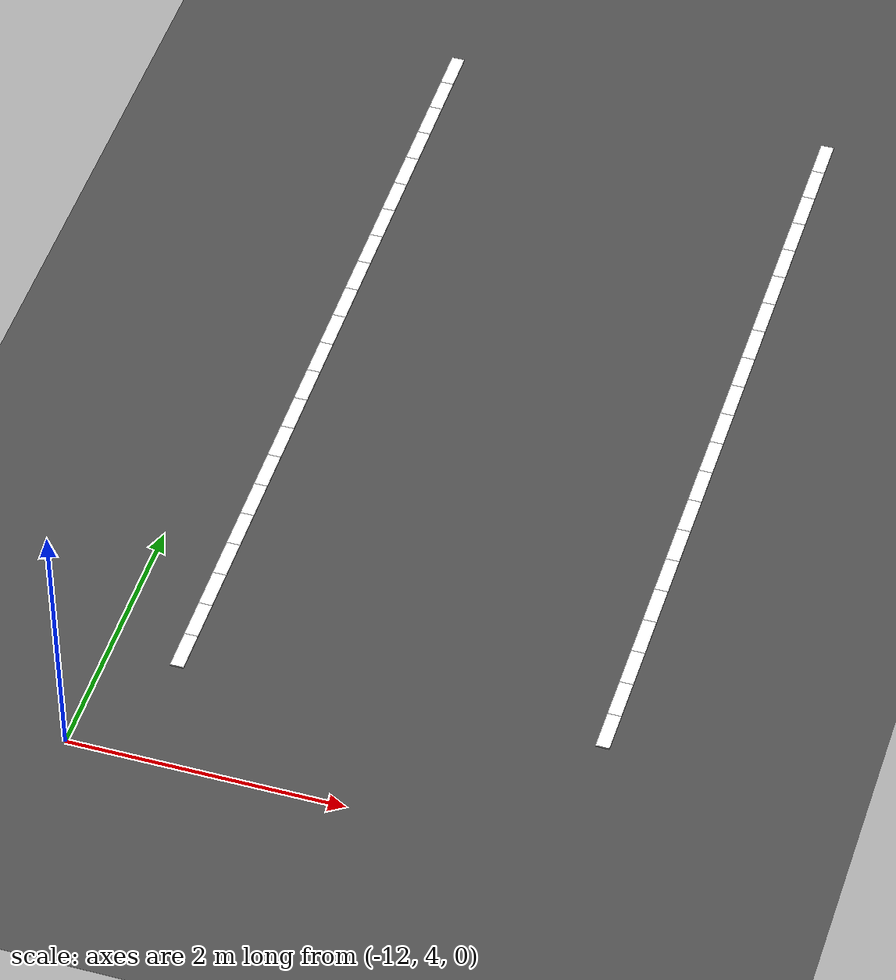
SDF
<sdf version="1.10">
 <world name="igvc_autonav">
  <model name="ground_plane">
   <static>true</static>
   <link name="link">
    <collision name="collision">
     <geometry><plane><normal>0 0 1</normal><size>60 60</size></plane></geometry>
     <surface><friction><ode><mu>0.80000000000000004</mu><mu2>0.80000000000000004</mu2></ode></friction></surface>
    </collision>
    <visual name="visual">
     <geometry><plane><normal>0 0 1</normal><size>60 60</size></plane></geometry>
     <material>
      <ambient>0.25 0.25 0.25 1</ambient>
      <diffuse>0.300000012 0.300000012 0.300000012 1</diffuse>
      <specular>0.100000001 0.100000001 0.100000001 1</specular>
     </material>
    </visual>
    <inertial>
     <mass>1</mass>
     <inertia><ixx>1</ixx><ixy>0</ixy><ixz>0</ixz><iyy>1</iyy><iyz>0</iyz><izz>1</izz></inertia>
    </inertial>
   </link>
  </model>
  <model name="lane_inner_156">
   <static>true</static>
   <pose>-8.5 11.15 0.01 0 0 -1.5708</pose>
   <link name="link">
    <visual name="visual">
     <geometry><box><size>0.29999999999999999 0.10000000000000001 0.01</size></box></geometry>
     <material><ambient>1 1 1 1</ambient><diffuse>1 1 1 1</diffuse><emissive>1 1 1 1</emissive></material>
    </visual>
    <inertial>
     <mass>1</mass>
     <inertia><ixx>1</ixx><ixy>0</ixy><ixz>0</ixz><iyy>1</iyy><iyz>0</iyz><izz>1</izz></inertia>
    </inertial>
   </link>
  </model>
  <model name="lane_inner_157">
   <static>true</static>
   <pose>-8.5 10.85 0.01 0 0 -1.5708</pose>
   <link name="link">
    <visual name="visual">
     <geometry><box><size>0.29999999999999999 0.10000000000000001 0.01</size></box></geometry>
     <material><ambient>1 1 1 1</ambient><diffuse>1 1 1 1</diffuse><emissive>1 1 1 1</emissive></material>
    </visual>
    <inertial>
     <mass>1</mass>
     <inertia><ixx>1</ixx><ixy>0</ixy><ixz>0</ixz><iyy>1</iyy><iyz>0</iyz><izz>1</izz></inertia>
    </inertial>
   </link>
  </model>
  <model name="lane_inner_158">
   <static>true</static>
   <pose>-8.5 10.550000000000001 0.01 0 0 -1.5708</pose>
   <link name="link">
    <visual name="visual">
     <geometry><box><size>0.29999999999999999 0.10000000000000001 0.01</size></box></geometry>
     <material><ambient>1 1 1 1</ambient><diffuse>1 1 1 1</diffuse><emissive>1 1 1 1</emissive></material>
    </visual>
    <inertial>
     <mass>1</mass>
     <inertia><ixx>1</ixx><ixy>0</ixy><ixz>0</ixz><iyy>1</iyy><iyz>0</iyz><izz>1</izz></inertia>
    </inertial>
   </link>
  </model>
  <model name="lane_inner_159">
   <static>true</static>
   <pose>-8.5 10.25 0.01 0 0 -1.5708</pose>
   <link name="link">
    <visual name="visual">
     <geometry><box><size>0.29999999999999999 0.10000000000000001 0.01</size></box></geometry>
     <material><ambient>1 1 1 1</ambient><diffuse>1 1 1 1</diffuse><emissive>1 1 1 1</emissive></material>
    </visual>
    <inertial>
     <mass>1</mass>
     <inertia><ixx>1</ixx><ixy>0</ixy><ixz>0</ixz><iyy>1</iyy><iyz>0</iyz><izz>1</izz></inertia>
    </inertial>
   </link>
  </model>
  <model name="lane_inner_160">
   <static>true</static>
   <pose>-8.5 9.9499999999999993 0.01 0 0 -1.5708</pose>
   <link name="link">
    <visual name="visual">
     <geometry><box><size>0.29999999999999999 0.10000000000000001 0.01</size></box></geometry>
     <material><ambient>1 1 1 1</ambient><diffuse>1 1 1 1</diffuse><emissive>1 1 1 1</emissive></material>
    </visual>
    <inertial>
     <mass>1</mass>
     <inertia><ixx>1</ixx><ixy>0</ixy><ixz>0</ixz><iyy>1</iyy><iyz>0</iyz><izz>1</izz></inertia>
    </inertial>
   </link>
  </model>
  <model name="lane_inner_161">
   <static>true</static>
   <pose>-8.5 9.6500000000000004 0.01 0 0 -1.5708</pose>
   <link name="link">
    <visual name="visual">
     <geometry><box><size>0.29999999999999999 0.10000000000000001 0.01</size></box></geometry>
     <material><ambient>1 1 1 1</ambient><diffuse>1 1 1 1</diffuse><emissive>1 1 1 1</emissive></material>
    </visual>
    <inertial>
     <mass>1</mass>
     <inertia><ixx>1</ixx><ixy>0</ixy><ixz>0</ixz><iyy>1</iyy><iyz>0</iyz><izz>1</izz></inertia>
    </inertial>
   </link>
  </model>
  <model name="lane_inner_162">
   <static>true</static>
   <pose>-8.5 9.3499999999999996 0.01 0 0 -1.5708</pose>
   <link name="link">
    <visual name="visual">
     <geometry><box><size>0.29999999999999999 0.10000000000000001 0.01</size></box></geometry>
     <material><ambient>1 1 1 1</ambient><diffuse>1 1 1 1</diffuse><emissive>1 1 1 1</emissive></material>
    </visual>
    <inertial>
     <mass>1</mass>
     <inertia><ixx>1</ixx><ixy>0</ixy><ixz>0</ixz><iyy>1</iyy><iyz>0</iyz><izz>1</izz></inertia>
    </inertial>
   </link>
  </model>
  <model name="lane_inner_163">
   <static>true</static>
   <pose>-8.5 9.0500000000000007 0.01 0 0 -1.5708</pose>
   <link name="link">
    <visual name="visual">
     <geometry><box><size>0.29999999999999999 0.10000000000000001 0.01</size></box></geometry>
     <material><ambient>1 1 1 1</ambient><diffuse>1 1 1 1</diffuse><emissive>1 1 1 1</emissive></material>
    </visual>
    <inertial>
     <mass>1</mass>
     <inertia><ixx>1</ixx><ixy>0</ixy><ixz>0</ixz><iyy>1</iyy><iyz>0</iyz><izz>1</izz></inertia>
    </inertial>
   </link>
  </model>
  <model name="lane_inner_164">
   <static>true</static>
   <pose>-8.5 8.75 0.01 0 0 -1.5708</pose>
   <link name="link">
    <visual name="visual">
     <geometry><box><size>0.29999999999999999 0.10000000000000001 0.01</size></box></geometry>
     <material><ambient>1 1 1 1</ambient><diffuse>1 1 1 1</diffuse><emissive>1 1 1 1</emissive></material>
    </visual>
    <inertial>
     <mass>1</mass>
     <inertia><ixx>1</ixx><ixy>0</ixy><ixz>0</ixz><iyy>1</iyy><iyz>0</iyz><izz>1</izz></inertia>
    </inertial>
   </link>
  </model>
  <model name="lane_inner_165">
   <static>true</static>
   <pose>-8.5 8.4499999999999993 0.01 0 0 -1.5708</pose>
   <link name="link">
    <visual name="visual">
     <geometry><box><size>0.29999999999999999 0.10000000000000001 0.01</size></box></geometry>
     <material><ambient>1 1 1 1</ambient><diffuse>1 1 1 1</diffuse><emissive>1 1 1 1</emissive></material>
    </visual>
    <inertial>
     <mass>1</mass>
     <inertia><ixx>1</ixx><ixy>0</ixy><ixz>0</ixz><iyy>1</iyy><iyz>0</iyz><izz>1</izz></inertia>
    </inertial>
   </link>
  </model>
  <model name="lane_inner_166">
   <static>true</static>
   <pose>-8.5 8.1500000000000004 0.01 0 0 -1.5708</pose>
   <link name="link">
    <visual name="visual">
     <geometry><box><size>0.29999999999999999 0.10000000000000001 0.01</size></box></geometry>
     <material><ambient>1 1 1 1</ambient><diffuse>1 1 1 1</diffuse><emissive>1 1 1 1</emissive></material>
    </visual>
    <inertial>
     <mass>1</mass>
     <inertia><ixx>1</ixx><ixy>0</ixy><ixz>0</ixz><iyy>1</iyy><iyz>0</iyz><izz>1</izz></inertia>
    </inertial>
   </link>
  </model>
  <model name="lane_inner_167">
   <static>true</static>
   <pose>-8.5 7.8499999999999996 0.01 0 0 -1.5708</pose>
   <link name="link">
    <visual name="visual">
     <geometry><box><size>0.29999999999999999 0.10000000000000001 0.01</size></box></geometry>
     <material><ambient>1 1 1 1</ambient><diffuse>1 1 1 1</diffuse><emissive>1 1 1 1</emissive></material>
    </visual>
    <inertial>
     <mass>1</mass>
     <inertia><ixx>1</ixx><ixy>0</ixy><ixz>0</ixz><iyy>1</iyy><iyz>0</iyz><izz>1</izz></inertia>
    </inertial>
   </link>
  </model>
  <model name="lane_inner_168">
   <static>true</static>
   <pose>-8.5 7.5499999999999998 0.01 0 0 -1.5708</pose>
   <link name="link">
    <visual name="visual">
     <geometry><box><size>0.29999999999999999 0.10000000000000001 0.01</size></box></geometry>
     <material><ambient>1 1 1 1</ambient><diffuse>1 1 1 1</diffuse><emissive>1 1 1 1</emissive></material>
    </visual>
    <inertial>
     <mass>1</mass>
     <inertia><ixx>1</ixx><ixy>0</ixy><ixz>0</ixz><iyy>1</iyy><iyz>0</iyz><izz>1</izz></inertia>
    </inertial>
   </link>
  </model>
  <model name="lane_inner_169">
   <static>true</static>
   <pose>-8.5 7.25 0.01 0 0 -1.5708</pose>
   <link name="link">
    <visual name="visual">
     <geometry><box><size>0.29999999999999999 0.10000000000000001 0.01</size></box></geometry>
     <material><ambient>1 1 1 1</ambient><diffuse>1 1 1 1</diffuse><emissive>1 1 1 1</emissive></material>
    </visual>
    <inertial>
     <mass>1</mass>
     <inertia><ixx>1</ixx><ixy>0</ixy><ixz>0</ixz><iyy>1</iyy><iyz>0</iyz><izz>1</izz></inertia>
    </inertial>
   </link>
  </model>
  <model name="lane_inner_170">
   <static>true</static>
   <pose>-8.5 6.9500000000000002 0.01 0 0 -1.5708</pose>
   <link name="link">
    <visual name="visual">
     <geometry><box><size>0.29999999999999999 0.10000000000000001 0.01</size></box></geometry>
     <material><ambient>1 1 1 1</ambient><diffuse>1 1 1 1</diffuse><emissive>1 1 1 1</emissive></material>
    </visual>
    <inertial>
     <mass>1</mass>
     <inertia><ixx>1</ixx><ixy>0</ixy><ixz>0</ixz><iyy>1</iyy><iyz>0</iyz><izz>1</izz></inertia>
    </inertial>
   </link>
  </model>
  <model name="lane_inner_171">
   <static>true</static>
   <pose>-8.5 6.6500000000000004 0.01 0 0 -1.5708</pose>
   <link name="link">
    <visual name="visual">
     <geometry><box><size>0.29999999999999999 0.10000000000000001 0.01</size></box></geometry>
     <material><ambient>1 1 1 1</ambient><diffuse>1 1 1 1</diffuse><emissive>1 1 1 1</emissive></material>
    </visual>
    <inertial>
     <mass>1</mass>
     <inertia><ixx>1</ixx><ixy>0</ixy><ixz>0</ixz><iyy>1</iyy><iyz>0</iyz><izz>1</izz></inertia>
    </inertial>
   </link>
  </model>
  <model name="lane_inner_172">
   <static>true</static>
   <pose>-8.5 6.3499999999999996 0.01 0 0 -1.5708</pose>
   <link name="link">
    <visual name="visual">
     <geometry><box><size>0.29999999999999999 0.10000000000000001 0.01</size></box></geometry>
     <material><ambient>1 1 1 1</ambient><diffuse>1 1 1 1</diffuse><emissive>1 1 1 1</emissive></material>
    </visual>
    <inertial>
     <mass>1</mass>
     <inertia><ixx>1</ixx><ixy>0</ixy><ixz>0</ixz><iyy>1</iyy><iyz>0</iyz><izz>1</izz></inertia>
    </inertial>
   </link>
  </model>
  <model name="lane_inner_173">
   <static>true</static>
   <pose>-8.5 6.0499999999999998 0.01 0 0 -1.5708</pose>
   <link name="link">
    <visual name="visual">
     <geometry><box><size>0.29999999999999999 0.10000000000000001 0.01</size></box></geometry>
     <material><ambient>1 1 1 1</ambient><diffuse>1 1 1 1</diffuse><emissive>1 1 1 1</emissive></material>
    </visual>
    <inertial>
     <mass>1</mass>
     <inertia><ixx>1</ixx><ixy>0</ixy><ixz>0</ixz><iyy>1</iyy><iyz>0</iyz><izz>1</izz></inertia>
    </inertial>
   </link>
  </model>
  <model name="lane_inner_174">
   <static>true</static>
   <pose>-8.5 5.75 0.01 0 0 -1.5708</pose>
   <link name="link">
    <visual name="visual">
     <geometry><box><size>0.29999999999999999 0.10000000000000001 0.01</size></box></geometry>
     <material><ambient>1 1 1 1</ambient><diffuse>1 1 1 1</diffuse><emissive>1 1 1 1</emissive></material>
    </visual>
    <inertial>
     <mass>1</mass>
     <inertia><ixx>1</ixx><ixy>0</ixy><ixz>0</ixz><iyy>1</iyy><iyz>0</iyz><izz>1</izz></inertia>
    </inertial>
   </link>
  </model>
  <model name="lane_inner_175">
   <static>true</static>
   <pose>-8.5 5.4500000000000002 0.01 0 0 -1.5708</pose>
   <link name="link">
    <visual name="visual">
     <geometry><box><size>0.29999999999999999 0.10000000000000001 0.01</size></box></geometry>
     <material><ambient>1 1 1 1</ambient><diffuse>1 1 1 1</diffuse><emissive>1 1 1 1</emissive></material>
    </visual>
    <inertial>
     <mass>1</mass>
     <inertia><ixx>1</ixx><ixy>0</ixy><ixz>0</ixz><iyy>1</iyy><iyz>0</iyz><izz>1</izz></inertia>
    </inertial>
   </link>
  </model>
  <model name="lane_inner_176">
   <static>true</static>
   <pose>-8.5 5.1500000000000004 0.01 0 0 -1.5708</pose>
   <link name="link">
    <visual name="visual">
     <geometry><box><size>0.29999999999999999 0.10000000000000001 0.01</size></box></geometry>
     <material><ambient>1 1 1 1</ambient><diffuse>1 1 1 1</diffuse><emissive>1 1 1 1</emissive></material>
    </visual>
    <inertial>
     <mass>1</mass>
     <inertia><ixx>1</ixx><ixy>0</ixy><ixz>0</ixz><iyy>1</iyy><iyz>0</iyz><izz>1</izz></inertia>
    </inertial>
   </link>
  </model>
  <model name="lane_outer_188">
   <static>true</static>
   <pose>-11.5 11.300000000000001 0.01 0 0 -1.5708</pose>
   <link name="link">
    <visual name="visual">
     <geometry><box><size>0.29999999999999999 0.10000000000000001 0.01</size></box></geometry>
     <material><ambient>1 1 1 1</ambient><diffuse>1 1 1 1</diffuse><emissive>1 1 1 1</emissive></material>
    </visual>
    <inertial>
     <mass>1</mass>
     <inertia><ixx>1</ixx><ixy>0</ixy><ixz>0</ixz><iyy>1</iyy><iyz>0</iyz><izz>1</izz></inertia>
    </inertial>
   </link>
  </model>
  <model name="lane_outer_189">
   <static>true</static>
   <pose>-11.5 11 0.01 0 0 -1.5708</pose>
   <link name="link">
    <visual name="visual">
     <geometry><box><size>0.29999999999999999 0.10000000000000001 0.01</size></box></geometry>
     <material><ambient>1 1 1 1</ambient><diffuse>1 1 1 1</diffuse><emissive>1 1 1 1</emissive></material>
    </visual>
    <inertial>
     <mass>1</mass>
     <inertia><ixx>1</ixx><ixy>0</ixy><ixz>0</ixz><iyy>1</iyy><iyz>0</iyz><izz>1</izz></inertia>
    </inertial>
   </link>
  </model>
  <model name="lane_outer_190">
   <static>true</static>
   <pose>-11.5 10.699999999999999 0.01 0 0 -1.5708</pose>
   <link name="link">
    <visual name="visual">
     <geometry><box><size>0.29999999999999999 0.10000000000000001 0.01</size></box></geometry>
     <material><ambient>1 1 1 1</ambient><diffuse>1 1 1 1</diffuse><emissive>1 1 1 1</emissive></material>
    </visual>
    <inertial>
     <mass>1</mass>
     <inertia><ixx>1</ixx><ixy>0</ixy><ixz>0</ixz><iyy>1</iyy><iyz>0</iyz><izz>1</izz></inertia>
    </inertial>
   </link>
  </model>
  <model name="lane_outer_191">
   <static>true</static>
   <pose>-11.5 10.4 0.01 0 0 -1.5708</pose>
   <link name="link">
    <visual name="visual">
     <geometry><box><size>0.29999999999999999 0.10000000000000001 0.01</size></box></geometry>
     <material><ambient>1 1 1 1</ambient><diffuse>1 1 1 1</diffuse><emissive>1 1 1 1</emissive></material>
    </visual>
    <inertial>
     <mass>1</mass>
     <inertia><ixx>1</ixx><ixy>0</ixy><ixz>0</ixz><iyy>1</iyy><iyz>0</iyz><izz>1</izz></inertia>
    </inertial>
   </link>
  </model>
  <model name="lane_outer_192">
   <static>true</static>
   <pose>-11.5 10.1 0.01 0 0 -1.5708</pose>
   <link name="link">
    <visual name="visual">
     <geometry><box><size>0.29999999999999999 0.10000000000000001 0.01</size></box></geometry>
     <material><ambient>1 1 1 1</ambient><diffuse>1 1 1 1</diffuse><emissive>1 1 1 1</emissive></material>
    </visual>
    <inertial>
     <mass>1</mass>
     <inertia><ixx>1</ixx><ixy>0</ixy><ixz>0</ixz><iyy>1</iyy><iyz>0</iyz><izz>1</izz></inertia>
    </inertial>
   </link>
  </model>
  <model name="lane_outer_193">
   <static>true</static>
   <pose>-11.5 9.8000000000000007 0.01 0 0 -1.5708</pose>
   <link name="link">
    <visual name="visual">
     <geometry><box><size>0.29999999999999999 0.10000000000000001 0.01</size></box></geometry>
     <material><ambient>1 1 1 1</ambient><diffuse>1 1 1 1</diffuse><emissive>1 1 1 1</emissive></material>
    </visual>
    <inertial>
     <mass>1</mass>
     <inertia><ixx>1</ixx><ixy>0</ixy><ixz>0</ixz><iyy>1</iyy><iyz>0</iyz><izz>1</izz></inertia>
    </inertial>
   </link>
  </model>
  <model name="lane_outer_194">
   <static>true</static>
   <pose>-11.5 9.5 0.01 0 0 -1.5708</pose>
   <link name="link">
    <visual name="visual">
     <geometry><box><size>0.29999999999999999 0.10000000000000001 0.01</size></box></geometry>
     <material><ambient>1 1 1 1</ambient><diffuse>1 1 1 1</diffuse><emissive>1 1 1 1</emissive></material>
    </visual>
    <inertial>
     <mass>1</mass>
     <inertia><ixx>1</ixx><ixy>0</ixy><ixz>0</ixz><iyy>1</iyy><iyz>0</iyz><izz>1</izz></inertia>
    </inertial>
   </link>
  </model>
  <model name="lane_outer_195">
   <static>true</static>
   <pose>-11.5 9.1999999999999993 0.01 0 0 -1.5708</pose>
   <link name="link">
    <visual name="visual">
     <geometry><box><size>0.29999999999999999 0.10000000000000001 0.01</size></box></geometry>
     <material><ambient>1 1 1 1</ambient><diffuse>1 1 1 1</diffuse><emissive>1 1 1 1</emissive></material>
    </visual>
    <inertial>
     <mass>1</mass>
     <inertia><ixx>1</ixx><ixy>0</ixy><ixz>0</ixz><iyy>1</iyy><iyz>0</iyz><izz>1</izz></inertia>
    </inertial>
   </link>
  </model>
  <model name="lane_outer_196">
   <static>true</static>
   <pose>-11.5 8.9000000000000004 0.01 0 0 -1.5708</pose>
   <link name="link">
    <visual name="visual">
     <geometry><box><size>0.29999999999999999 0.10000000000000001 0.01</size></box></geometry>
     <material><ambient>1 1 1 1</ambient><diffuse>1 1 1 1</diffuse><emissive>1 1 1 1</emissive></material>
    </visual>
    <inertial>
     <mass>1</mass>
     <inertia><ixx>1</ixx><ixy>0</ixy><ixz>0</ixz><iyy>1</iyy><iyz>0</iyz><izz>1</izz></inertia>
    </inertial>
   </link>
  </model>
  <model name="lane_outer_197">
   <static>true</static>
   <pose>-11.5 8.5999999999999996 0.01 0 0 -1.5708</pose>
   <link name="link">
    <visual name="visual">
     <geometry><box><size>0.29999999999999999 0.10000000000000001 0.01</size></box></geometry>
     <material><ambient>1 1 1 1</ambient><diffuse>1 1 1 1</diffuse><emissive>1 1 1 1</emissive></material>
    </visual>
    <inertial>
     <mass>1</mass>
     <inertia><ixx>1</ixx><ixy>0</ixy><ixz>0</ixz><iyy>1</iyy><iyz>0</iyz><izz>1</izz></inertia>
    </inertial>
   </link>
  </model>
  <model name="lane_outer_198">
   <static>true</static>
   <pose>-11.5 8.3000000000000007 0.01 0 0 -1.5708</pose>
   <link name="link">
    <visual name="visual">
     <geometry><box><size>0.29999999999999999 0.10000000000000001 0.01</size></box></geometry>
     <material><ambient>1 1 1 1</ambient><diffuse>1 1 1 1</diffuse><emissive>1 1 1 1</emissive></material>
    </visual>
    <inertial>
     <mass>1</mass>
     <inertia><ixx>1</ixx><ixy>0</ixy><ixz>0</ixz><iyy>1</iyy><iyz>0</iyz><izz>1</izz></inertia>
    </inertial>
   </link>
  </model>
  <model name="lane_outer_199">
   <static>true</static>
   <pose>-11.5 8 0.01 0 0 -1.5708</pose>
   <link name="link">
    <visual name="visual">
     <geometry><box><size>0.29999999999999999 0.10000000000000001 0.01</size></box></geometry>
     <material><ambient>1 1 1 1</ambient><diffuse>1 1 1 1</diffuse><emissive>1 1 1 1</emissive></material>
    </visual>
    <inertial>
     <mass>1</mass>
     <inertia><ixx>1</ixx><ixy>0</ixy><ixz>0</ixz><iyy>1</iyy><iyz>0</iyz><izz>1</izz></inertia>
    </inertial>
   </link>
  </model>
  <model name="lane_outer_200">
   <static>true</static>
   <pose>-11.5 7.7000000000000002 0.01 0 0 -1.5708</pose>
   <link name="link">
    <visual name="visual">
     <geometry><box><size>0.29999999999999999 0.10000000000000001 0.01</size></box></geometry>
     <material><ambient>1 1 1 1</ambient><diffuse>1 1 1 1</diffuse><emissive>1 1 1 1</emissive></material>
    </visual>
    <inertial>
     <mass>1</mass>
     <inertia><ixx>1</ixx><ixy>0</ixy><ixz>0</ixz><iyy>1</iyy><iyz>0</iyz><izz>1</izz></inertia>
    </inertial>
   </link>
  </model>
  <model name="lane_outer_201">
   <static>true</static>
   <pose>-11.5 7.4000000000000004 0.01 0 0 -1.5708</pose>
   <link name="link">
    <visual name="visual">
     <geometry><box><size>0.29999999999999999 0.10000000000000001 0.01</size></box></geometry>
     <material><ambient>1 1 1 1</ambient><diffuse>1 1 1 1</diffuse><emissive>1 1 1 1</emissive></material>
    </visual>
    <inertial>
     <mass>1</mass>
     <inertia><ixx>1</ixx><ixy>0</ixy><ixz>0</ixz><iyy>1</iyy><iyz>0</iyz><izz>1</izz></inertia>
    </inertial>
   </link>
  </model>
  <model name="lane_outer_202">
   <static>true</static>
   <pose>-11.5 7.0999999999999996 0.01 0 0 -1.5708</pose>
   <link name="link">
    <visual name="visual">
     <geometry><box><size>0.29999999999999999 0.10000000000000001 0.01</size></box></geometry>
     <material><ambient>1 1 1 1</ambient><diffuse>1 1 1 1</diffuse><emissive>1 1 1 1</emissive></material>
    </visual>
    <inertial>
     <mass>1</mass>
     <inertia><ixx>1</ixx><ixy>0</ixy><ixz>0</ixz><iyy>1</iyy><iyz>0</iyz><izz>1</izz></inertia>
    </inertial>
   </link>
  </model>
  <model name="lane_outer_203">
   <static>true</static>
   <pose>-11.5 6.7999999999999998 0.01 0 0 -1.5708</pose>
   <link name="link">
    <visual name="visual">
     <geometry><box><size>0.29999999999999999 0.10000000000000001 0.01</size></box></geometry>
     <material><ambient>1 1 1 1</ambient><diffuse>1 1 1 1</diffuse><emissive>1 1 1 1</emissive></material>
    </visual>
    <inertial>
     <mass>1</mass>
     <inertia><ixx>1</ixx><ixy>0</ixy><ixz>0</ixz><iyy>1</iyy><iyz>0</iyz><izz>1</izz></inertia>
    </inertial>
   </link>
  </model>
  <model name="lane_outer_204">
   <static>true</static>
   <pose>-11.5 6.5 0.01 0 0 -1.5708</pose>
   <link name="link">
    <visual name="visual">
     <geometry><box><size>0.29999999999999999 0.10000000000000001 0.01</size></box></geometry>
     <material><ambient>1 1 1 1</ambient><diffuse>1 1 1 1</diffuse><emissive>1 1 1 1</emissive></material>
    </visual>
    <inertial>
     <mass>1</mass>
     <inertia><ixx>1</ixx><ixy>0</ixy><ixz>0</ixz><iyy>1</iyy><iyz>0</iyz><izz>1</izz></inertia>
    </inertial>
   </link>
  </model>
  <model name="lane_outer_205">
   <static>true</static>
   <pose>-11.5 6.2000000000000002 0.01 0 0 -1.5708</pose>
   <link name="link">
    <visual name="visual">
     <geometry><box><size>0.29999999999999999 0.10000000000000001 0.01</size></box></geometry>
     <material><ambient>1 1 1 1</ambient><diffuse>1 1 1 1</diffuse><emissive>1 1 1 1</emissive></material>
    </visual>
    <inertial>
     <mass>1</mass>
     <inertia><ixx>1</ixx><ixy>0</ixy><ixz>0</ixz><iyy>1</iyy><iyz>0</iyz><izz>1</izz></inertia>
    </inertial>
   </link>
  </model>
  <model name="lane_outer_206">
   <static>true</static>
   <pose>-11.5 5.9000000000000004 0.01 0 0 -1.5708</pose>
   <link name="link">
    <visual name="visual">
     <geometry><box><size>0.29999999999999999 0.10000000000000001 0.01</size></box></geometry>
     <material><ambient>1 1 1 1</ambient><diffuse>1 1 1 1</diffuse><emissive>1 1 1 1</emissive></material>
    </visual>
    <inertial>
     <mass>1</mass>
     <inertia><ixx>1</ixx><ixy>0</ixy><ixz>0</ixz><iyy>1</iyy><iyz>0</iyz><izz>1</izz></inertia>
    </inertial>
   </link>
  </model>
  <model name="lane_outer_207">
   <static>true</static>
   <pose>-11.5 5.5999999999999996 0.01 0 0 -1.5708</pose>
   <link name="link">
    <visual name="visual">
     <geometry><box><size>0.29999999999999999 0.10000000000000001 0.01</size></box></geometry>
     <material><ambient>1 1 1 1</ambient><diffuse>1 1 1 1</diffuse><emissive>1 1 1 1</emissive></material>
    </visual>
    <inertial>
     <mass>1</mass>
     <inertia><ixx>1</ixx><ixy>0</ixy><ixz>0</ixz><iyy>1</iyy><iyz>0</iyz><izz>1</izz></inertia>
    </inertial>
   </link>
  </model>
  <model name="lane_outer_208">
   <static>true</static>
   <pose>-11.5 5.2999999999999998 0.01 0 0 -1.5708</pose>
   <link name="link">
    <visual name="visual">
     <geometry><box><size>0.29999999999999999 0.10000000000000001 0.01</size></box></geometry>
     <material><ambient>1 1 1 1</ambient><diffuse>1 1 1 1</diffuse><emissive>1 1 1 1</emissive></material>
    </visual>
    <inertial>
     <mass>1</mass>
     <inertia><ixx>1</ixx><ixy>0</ixy><ixz>0</ixz><iyy>1</iyy><iyz>0</iyz><izz>1</izz></inertia>
    </inertial>
   </link>
  </model>
  <model name="lane_outer_209">
   <static>true</static>
   <pose>-11.5 5 0.01 0 0 -1.5708</pose>
   <link name="link">
    <visual name="visual">
     <geometry><box><size>0.29999999999999999 0.10000000000000001 0.01</size></box></geometry>
     <material><ambient>1 1 1 1</ambient><diffuse>1 1 1 1</diffuse><emissive>1 1 1 1</emissive></material>
    </visual>
    <inertial>
     <mass>1</mass>
     <inertia><ixx>1</ixx><ixy>0</ixy><ixz>0</ixz><iyy>1</iyy><iyz>0</iyz><izz>1</izz></inertia>
    </inertial>
   </link>
  </model>
 </world>
</sdf>
